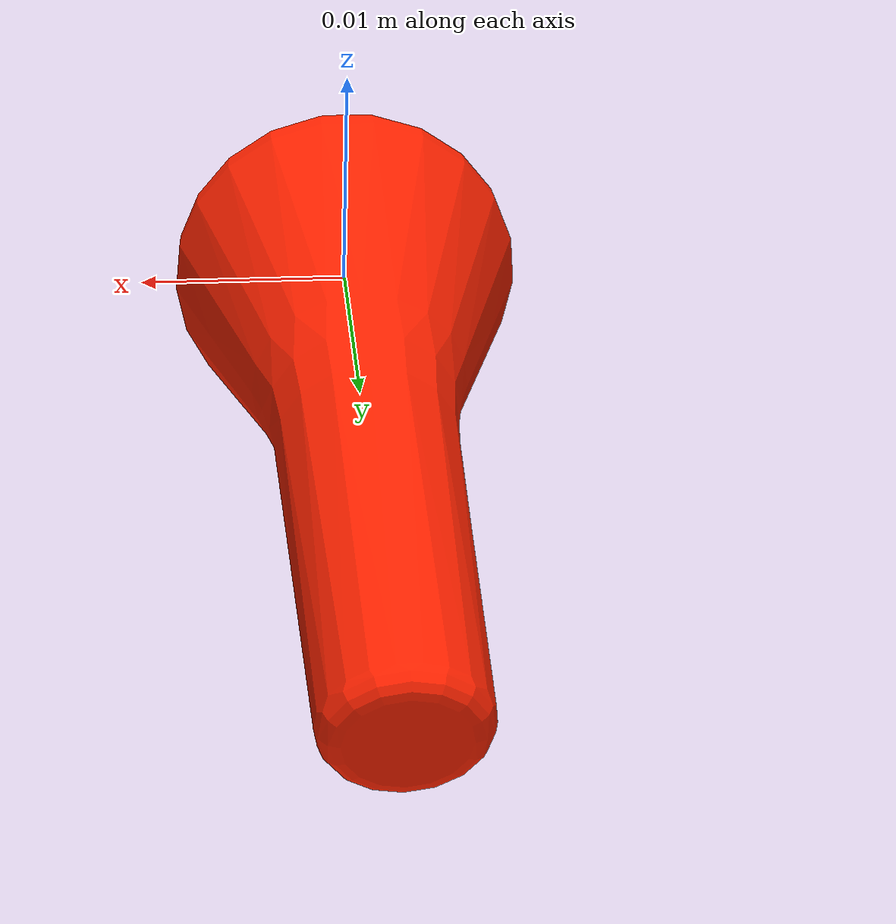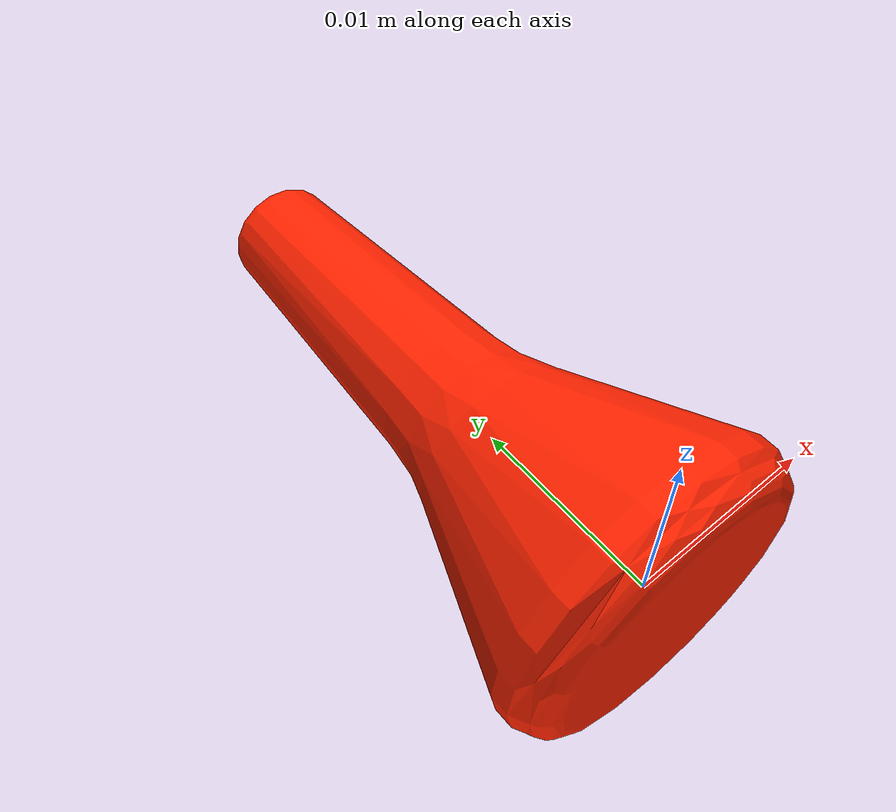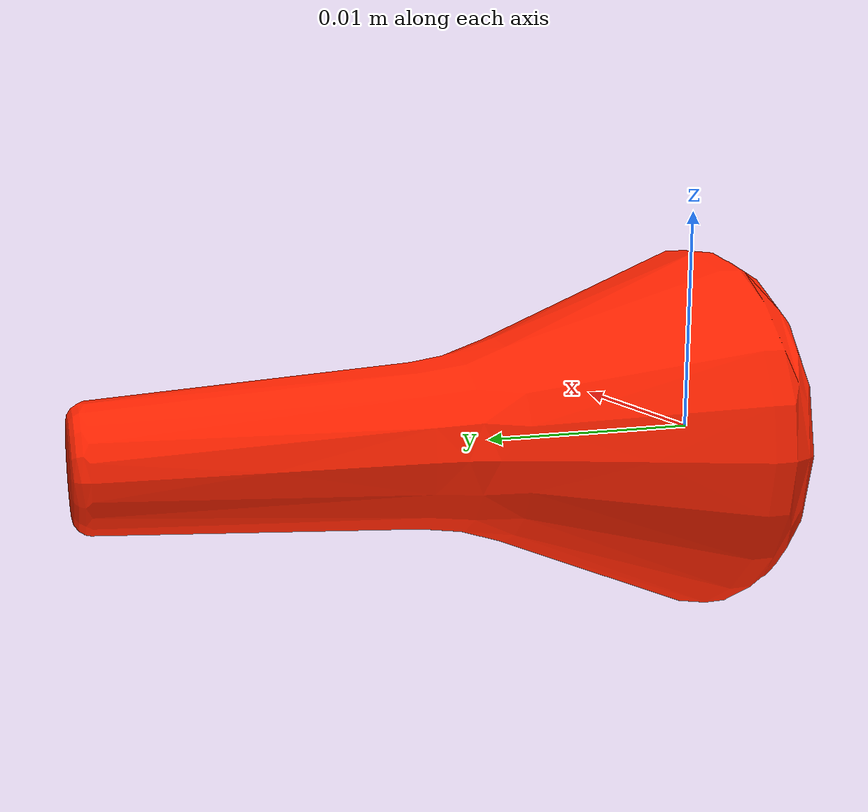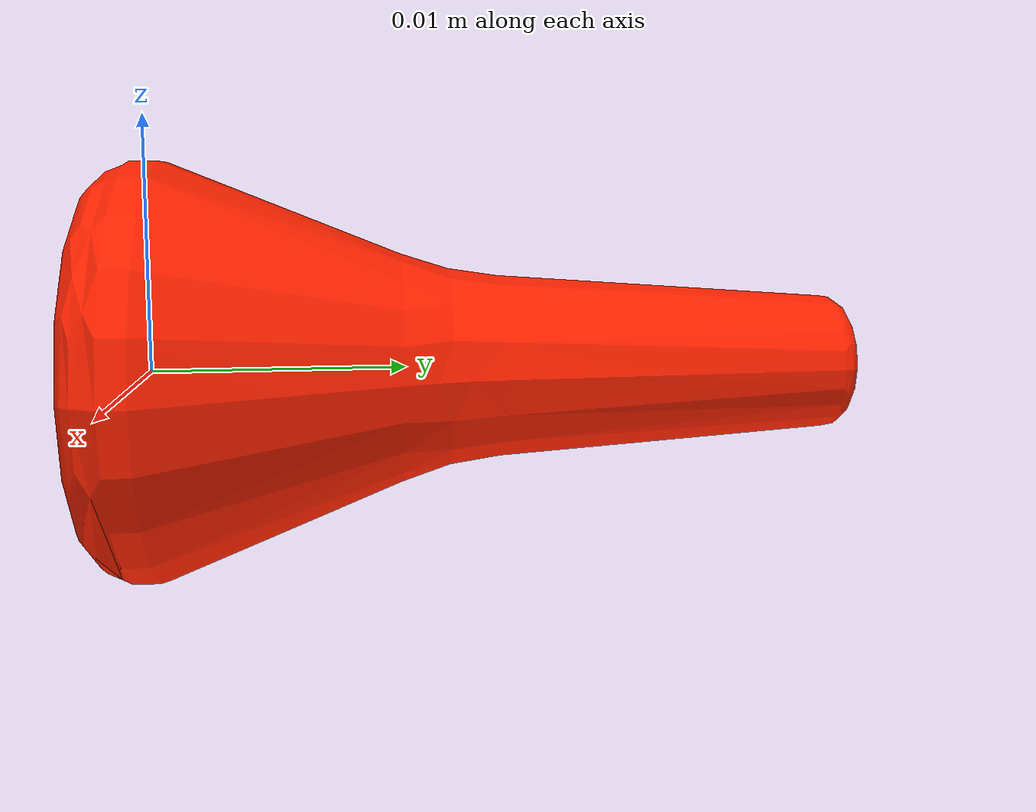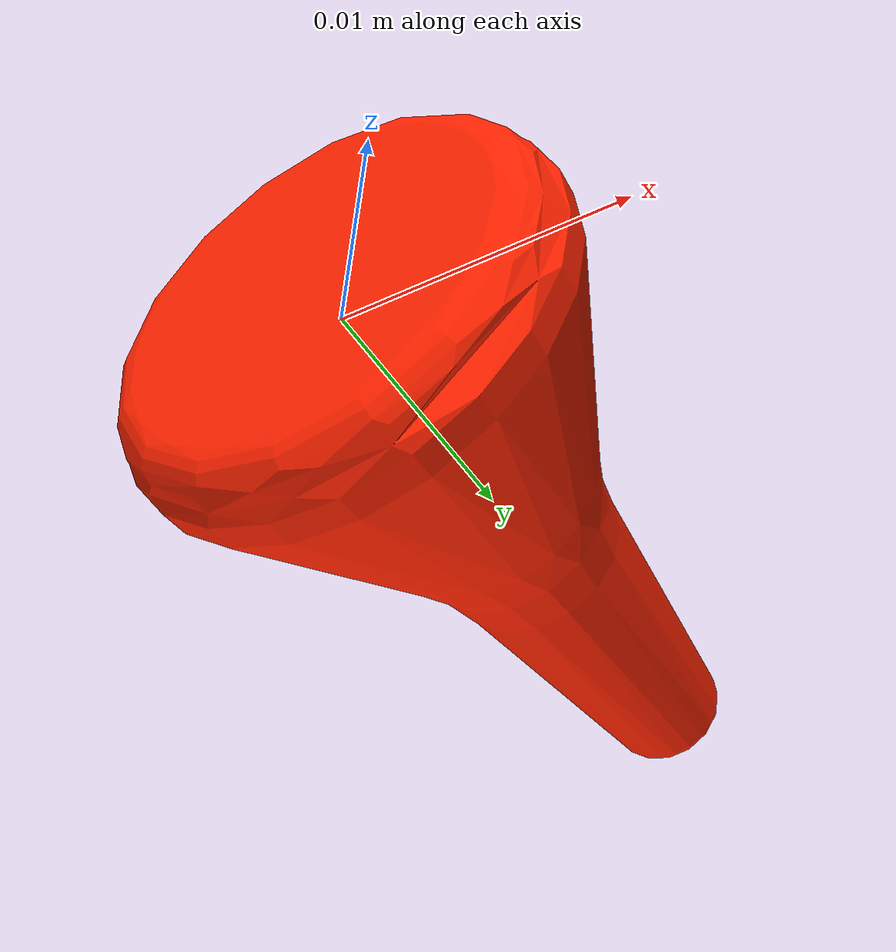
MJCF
<mujoco model="adjustable_tool_tip">
  <default>
    <default class="visual">
      <geom group="2" type="mesh" contype="0" conaffinity="0"/>
    </default>
    <default class="collision">
      <geom group="3" type="mesh"/>
    </default>
  </default>
  <asset>
    <material name="mat0" specular="0.14415" shininess="0.25" rgba="1 0.13514 0 1.0"/>
    <mesh file="adjustable_tool_tip.obj"/>
  </asset>
  <worldbody>
    <body name="adjustable_tool_tip">
      <geom material="mat0" mesh="adjustable_tool_tip" class="visual"/>
      <geom mesh="adjustable_tool_tip" class="collision"/>
    </body>
  </worldbody>
</mujoco>
